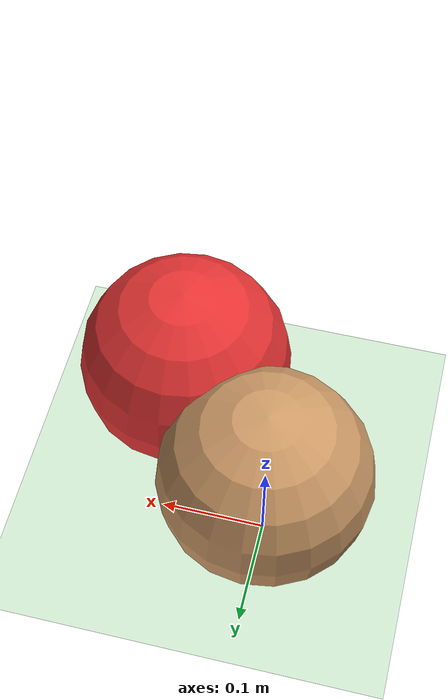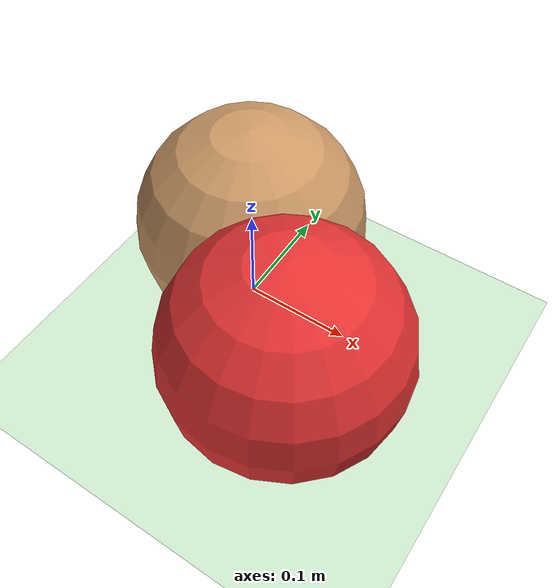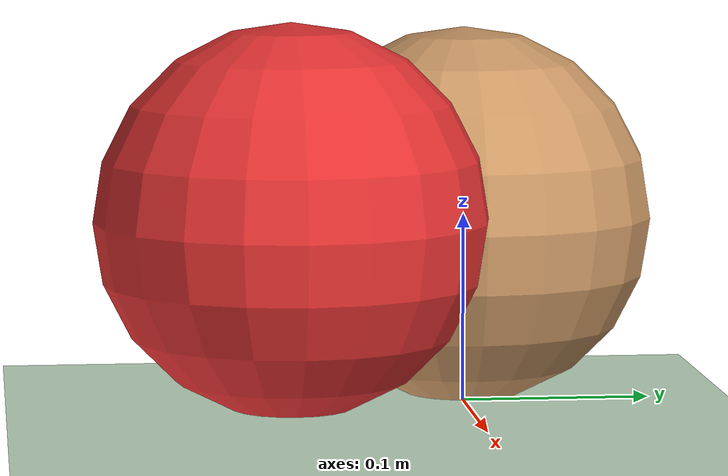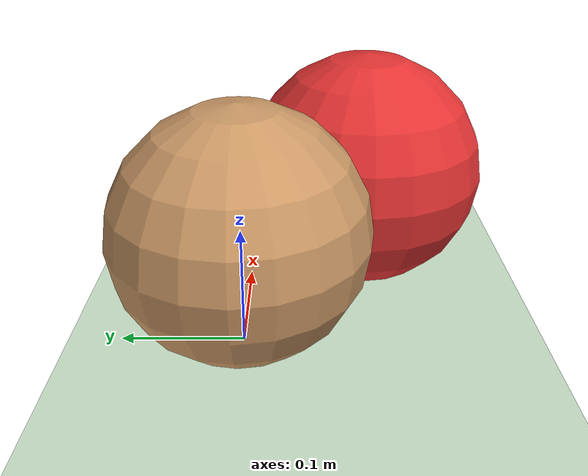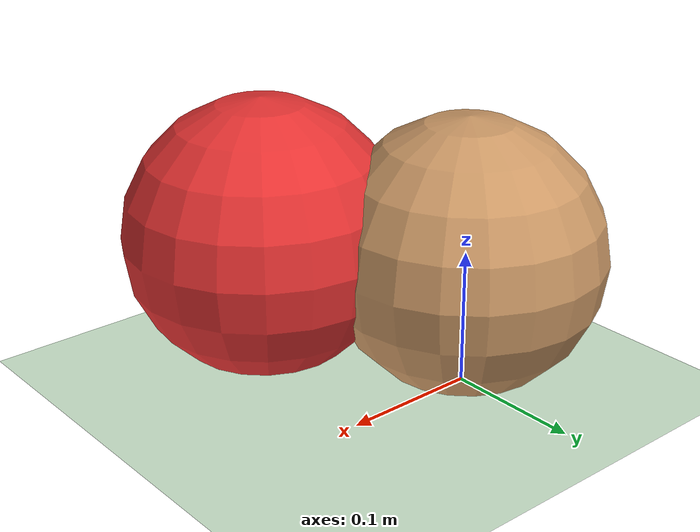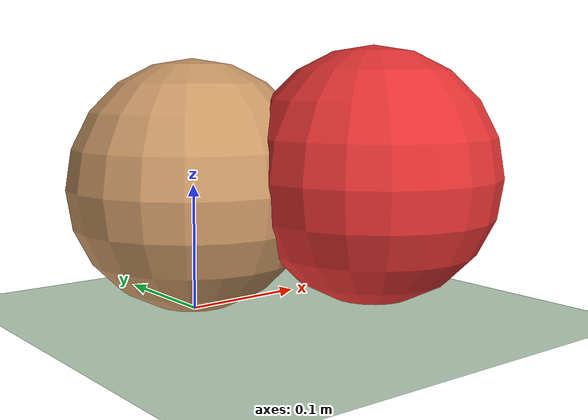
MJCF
<mujoco>
  <compiler inertiafromgeom="true" angle="degree" coordinate="local" />
  <option timestep="0.1" integrator="RK4" />
  <default>
    <joint limited="false" armature="0" damping="0" />
    <geom condim="3" conaffinity="0" margin="0" friction="1 0.5 0.5" rgba="0.8 0.6 0.4 1" density="100" />
  </default>
  <asset>
    <texture type="skybox" builtin="gradient" width="100" height="100" rgb1="1 1 1" rgb2="0 0 0" />
    <texture name="texgeom" type="cube" builtin="flat" mark="cross" width="127" height="1278" rgb1="0.8 0.6 0.4" rgb2="0.8 0.6 0.4" markrgb="1 1 1" random="0.01" />
    <texture name="texplane" type="2d" builtin="checker" rgb1="0 0 0" rgb2="0.8 0.8 0.8" width="100" height="100" />
    <material name='MatPlane' texture="texplane" shininess="1" texrepeat="30 30" specular="1"  reflectance="0.5" />
    <material name='geom' texture="texgeom" texuniform="true" />
    <material name="MatGnd" specular="0" shininess="0" reflectance="0" rgba='1 1 1 1'/>
  </asset>
  <worldbody>
    <light directional="true" cutoff="100" exponent="1" diffuse="1 1 1" specular=".1 .1 .1" pos="0 0 1.3" dir="-0 0 -1.3" />
    <!--geom name="gnd" material="MatGnd" type="plane" contype="0" conaffinity="0" pos="0 0 0" size="40 40 40"/-->
    <geom name='floor' material="MatPlane" pos='0 0 0' size='40 40 40' type='plane' conaffinity='1' rgba='0.8 0.9 0.8 1' condim='3' />
    <body name="torso" pos="0 0 0">
      <geom name="pointbody" type="sphere" size="0.1" pos="0 0 0.1" />
      <joint name='ballx' type='slide' axis='1 0 0' pos='0 0 0' damping="15"/>
      <joint name='bally' type='slide' axis='0 1 0' pos='0 0 0' damping="15"/>
    </body>
    <body name="target" pos=".1 -.1 .01">
			<joint armature="0" axis="1 0 0" damping="0" limited="false" name="target_x" pos="0 0 0" range="-.3 .3" ref=".1" stiffness="0" type="slide"/>
			<joint armature="0" axis="0 1 0" damping="0" limited="false" name="target_y" pos="0 0 0" range="-.3 .3" ref="-.1" stiffness="0" type="slide"/>
			<geom conaffinity="0" contype="0" name="target" pos="0 0 0.1" rgba="0.9 0.2 0.2 0.9" size="0.1" type="sphere"/>
		</body>
  </worldbody>
  <actuator>
    <!-- Those are just dummy actuators for providing ranges -->
    <position joint='ballx' ctrlrange="-20 20" ctrllimited="true" kp="150"/>
    <position joint='bally' ctrlrange="-20 20" ctrllimited="true" kp="150"/>
  </actuator>
</mujoco>
